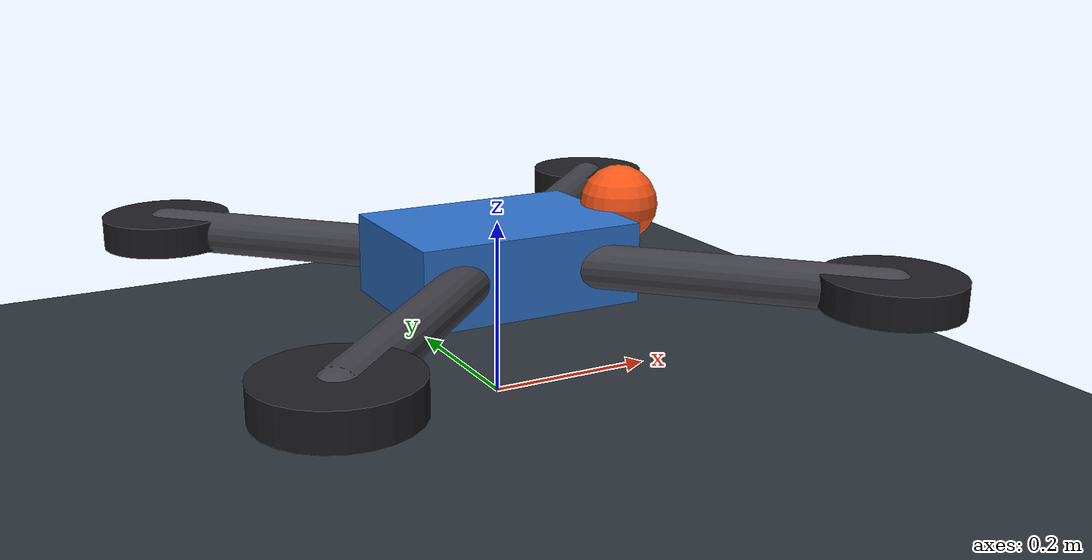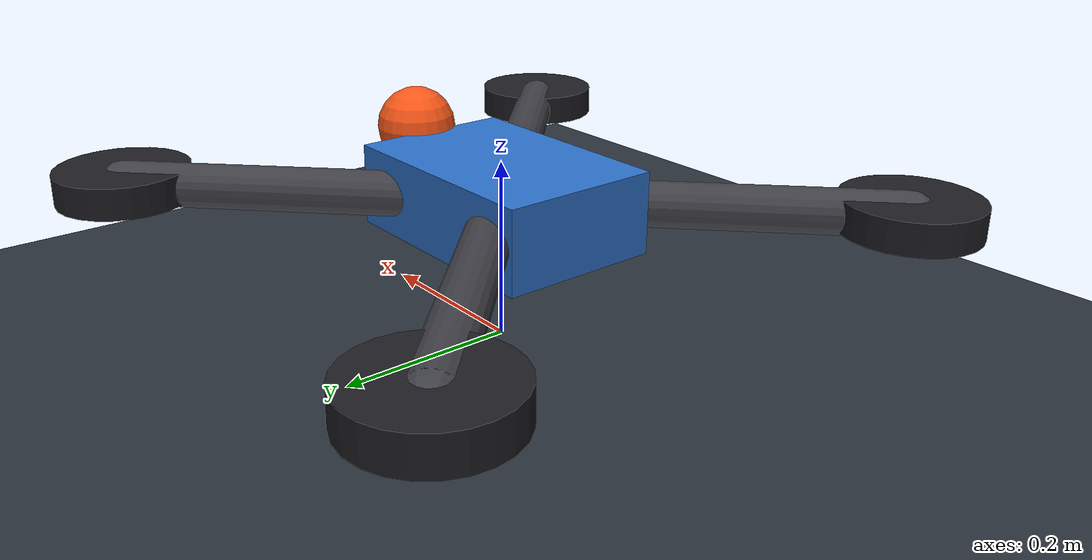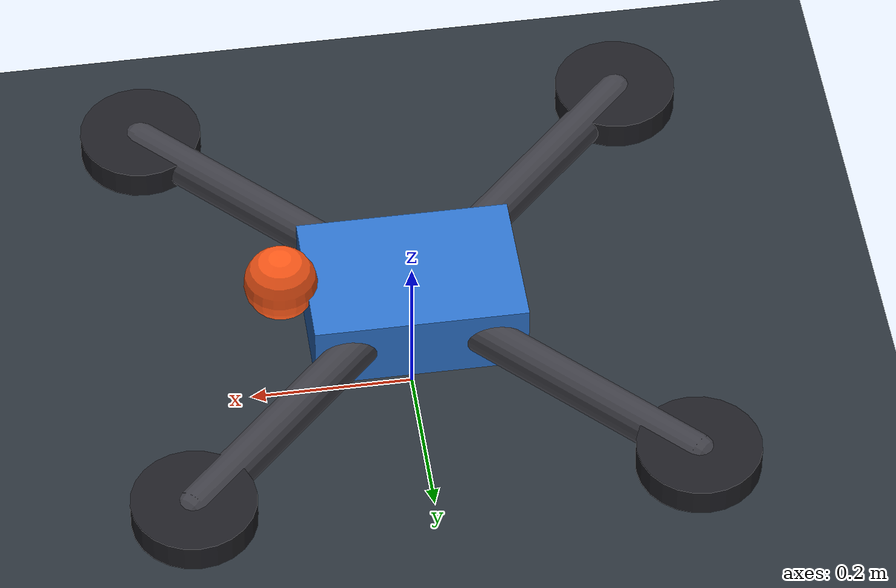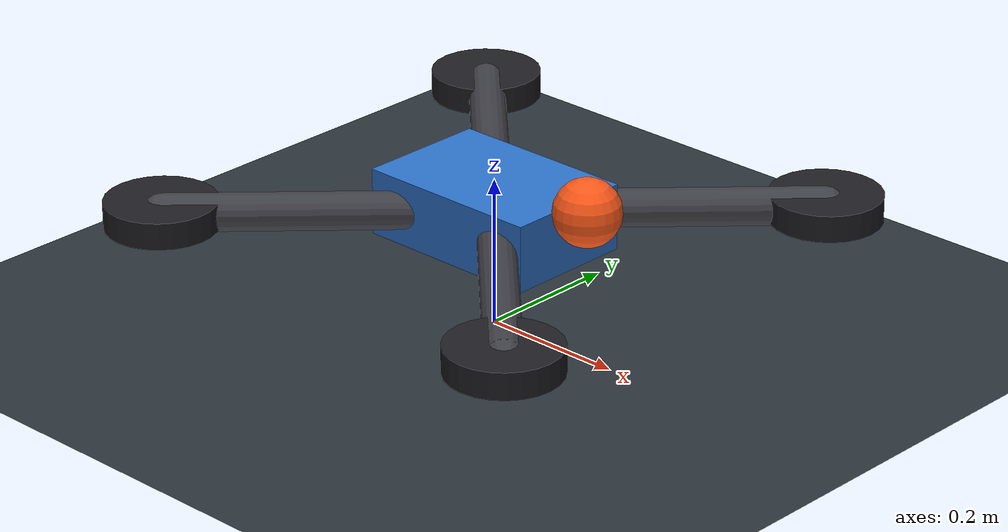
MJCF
<mujoco model="planar_holonomic_drone">

  <compiler autolimits="true"/>
  <option timestep="0.002" integrator="implicitfast" gravity="0 0 0"/>

  <visual>
    <global offwidth="1280" offheight="720"/>
    <headlight ambient="0.35 0.35 0.35" diffuse="0.7 0.7 0.7" specular="0.2 0.2 0.2"/>
  </visual>

  <asset>
    <texture name="grid_tex" type="2d" builtin="checker"
             width="512" height="512" rgb1="0.12 0.15 0.18" rgb2="0.22 0.25 0.28"/>
    <material name="grid_mat" texture="grid_tex" texrepeat="2 2" texuniform="true" reflectance="0.08"/>
  </asset>

  <worldbody>
    <geom name="ground" type="plane" size="30 30 0.1" material="grid_mat"/>
    <light pos="0 0 8" dir="0 0 -1" diffuse="0.8 0.8 0.8"/>

    <body name="holonomic_drone" pos="0 0 0.16">
      <!-- Composite planar joint: two world-frame translations + yaw. -->
      <joint name="x_joint" type="slide" axis="1 0 0" damping="0.15" armature="0.01"/>
      <joint name="y_joint" type="slide" axis="0 1 0" damping="0.15" armature="0.01"/>
      <joint name="yaw_joint" type="hinge" axis="0 0 1" damping="0.03" armature="0.005"/>

      <!-- Explicit planar vehicle inertia. -->
      <inertial pos="0 0 0" mass="2.0" diaginertia="0.045 0.045 0.075"/>

      <!-- Simple quad/drone-like visual body.  Contacts are disabled because
           altitude is constrained by the planar joint model. -->
      <geom type="box" size="0.13 0.09 0.045" rgba="0.18 0.45 0.8 1"
            contype="0" conaffinity="0"/>
      <geom type="capsule" fromto="-0.30 -0.30 0  0.30 0.30 0" size="0.025"
            rgba="0.25 0.25 0.28 1" contype="0" conaffinity="0"/>
      <geom type="capsule" fromto="-0.30 0.30 0  0.30 -0.30 0" size="0.025"
            rgba="0.25 0.25 0.28 1" contype="0" conaffinity="0"/>

      <geom type="cylinder" pos="0.30 0.30 0" size="0.075 0.018"
            rgba="0.12 0.12 0.14 1" contype="0" conaffinity="0"/>
      <geom type="cylinder" pos="-0.30 -0.30 0" size="0.075 0.018"
            rgba="0.12 0.12 0.14 1" contype="0" conaffinity="0"/>
      <geom type="cylinder" pos="-0.30 0.30 0" size="0.075 0.018"
            rgba="0.12 0.12 0.14 1" contype="0" conaffinity="0"/>
      <geom type="cylinder" pos="0.30 -0.30 0" size="0.075 0.018"
            rgba="0.12 0.12 0.14 1" contype="0" conaffinity="0"/>

      <!-- Front marker makes independent yaw easy to see. -->
      <geom name="front_marker" type="sphere" pos="0.16 0 0.045" size="0.045"
            rgba="1 0.35 0.1 1" contype="0" conaffinity="0"/>
    </body>
  </worldbody>

  <actuator>
    <velocity name="vx_servo" joint="x_joint" kv="20" forcerange="-20 20"/>
    <velocity name="vy_servo" joint="y_joint" kv="20" forcerange="-20 20"/>
    <velocity name="yaw_rate_servo" joint="yaw_joint" kv="4" forcerange="-3 3"/>
  </actuator>
</mujoco>
